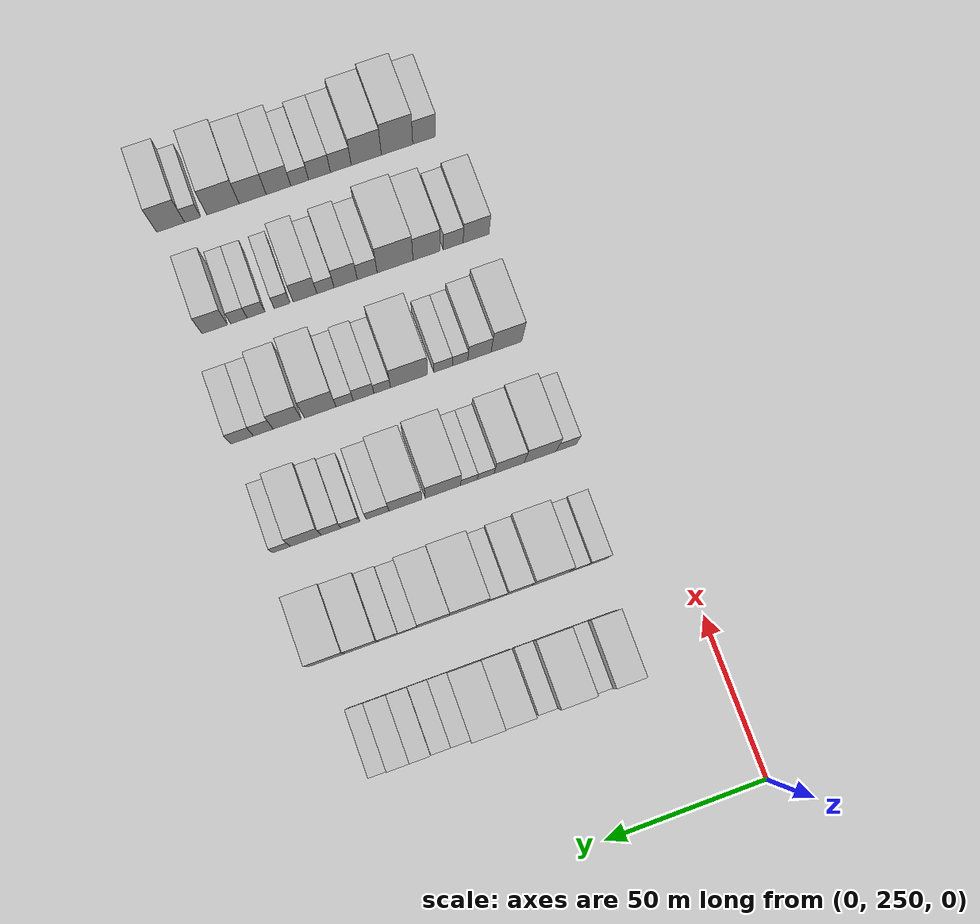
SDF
<sdf version="1.6">
 <world name="default">
  <model name="building_88">
   <static>1</static>
   <pose>50.0000 279.2473 0 0.000000 0.000000 0.000000</pose>
   <link name="link">
    <pose>0 0 10.50 0 0 0</pose>
    <collision name="collision"><geometry><box><size>20.0000 9.1618 21.0000</size></box></geometry></collision>
    <visual name="visual">
     <cast_shadows>0</cast_shadows>
     <geometry><box><size>20.0000 9.1618 21.0000</size></box></geometry>
     <material>
      <script>
       <uri>model://HANNAS_wall/materials/scripts</uri>
       <uri>model://HANNAS_wall/materials/textures</uri>
       <name>vrc/HANNAS_wall</name>
      </script>
     </material>
    </visual>
   </link>
  </model>
  <model name="building_89">
   <static>1</static>
   <pose>50.0000 286.6895 0 0.000000 0.000000 0.000000</pose>
   <link name="link">
    <pose>0 0 6.00 0 0 0</pose>
    <collision name="collision"><geometry><box><size>20.0000 5.7227 12.0000</size></box></geometry></collision>
    <visual name="visual">
     <cast_shadows>0</cast_shadows>
     <geometry><box><size>20.0000 5.7227 12.0000</size></box></geometry>
     <material>
      <script>
       <uri>model://HANNAS_wall/materials/scripts</uri>
       <uri>model://HANNAS_wall/materials/textures</uri>
       <name>vrc/HANNAS_wall</name>
      </script>
     </material>
    </visual>
   </link>
  </model>
  <model name="building_90">
   <static>1</static>
   <pose>50.0000 294.9625 0 0.000000 0.000000 0.000000</pose>
   <link name="link">
    <pose>0 0 12.00 0 0 0</pose>
    <collision name="collision"><geometry><box><size>20.0000 10.8232 24.0000</size></box></geometry></collision>
    <visual name="visual">
     <cast_shadows>0</cast_shadows>
     <geometry><box><size>20.0000 10.8232 24.0000</size></box></geometry>
     <material>
      <script>
       <uri>model://HANNAS_wall/materials/scripts</uri>
       <uri>model://HANNAS_wall/materials/textures</uri>
       <name>vrc/HANNAS_wall</name>
      </script>
     </material>
    </visual>
   </link>
  </model>
  <model name="building_91">
   <static>1</static>
   <pose>50.0000 303.2726 0 0.000000 0.000000 0.000000</pose>
   <link name="link">
    <pose>0 0 6.00 0 0 0</pose>
    <collision name="collision"><geometry><box><size>20.0000 5.7970 12.0000</size></box></geometry></collision>
    <visual name="visual">
     <cast_shadows>0</cast_shadows>
     <geometry><box><size>20.0000 5.7970 12.0000</size></box></geometry>
     <material>
      <script>
       <uri>model://HANNAS_wall/materials/scripts</uri>
       <uri>model://HANNAS_wall/materials/textures</uri>
       <name>vrc/HANNAS_wall</name>
      </script>
     </material>
    </visual>
   </link>
  </model>
  <model name="building_92">
   <static>1</static>
   <pose>50.0000 311.8122 0 0.000000 0.000000 0.000000</pose>
   <link name="link">
    <pose>0 0 10.50 0 0 0</pose>
    <collision name="collision"><geometry><box><size>20.0000 9.2822 21.0000</size></box></geometry></collision>
    <visual name="visual">
     <cast_shadows>0</cast_shadows>
     <geometry><box><size>20.0000 9.2822 21.0000</size></box></geometry>
     <material>
      <script>
       <uri>model://HANNAS_wall/materials/scripts</uri>
       <uri>model://HANNAS_wall/materials/textures</uri>
       <name>vrc/HANNAS_wall</name>
      </script>
     </material>
    </visual>
   </link>
  </model>
  <model name="building_93">
   <static>1</static>
   <pose>50.0000 321.4640 0 0.000000 0.000000 0.000000</pose>
   <link name="link">
    <pose>0 0 12.00 0 0 0</pose>
    <collision name="collision"><geometry><box><size>20.0000 10.0214 24.0000</size></box></geometry></collision>
    <visual name="visual">
     <cast_shadows>0</cast_shadows>
     <geometry><box><size>20.0000 10.0214 24.0000</size></box></geometry>
     <material>
      <script>
       <uri>model://HANNAS_wall/materials/scripts</uri>
       <uri>model://HANNAS_wall/materials/textures</uri>
       <name>vrc/HANNAS_wall</name>
      </script>
     </material>
    </visual>
   </link>
  </model>
  <model name="building_94">
   <static>1</static>
   <pose>50.0000 329.4486 0 0.000000 0.000000 0.000000</pose>
   <link name="link">
    <pose>0 0 6.00 0 0 0</pose>
    <collision name="collision"><geometry><box><size>20.0000 5.9478 12.0000</size></box></geometry></collision>
    <visual name="visual">
     <cast_shadows>0</cast_shadows>
     <geometry><box><size>20.0000 5.9478 12.0000</size></box></geometry>
     <material>
      <script>
       <uri>model://HANNAS_wall/materials/scripts</uri>
       <uri>model://HANNAS_wall/materials/textures</uri>
       <name>vrc/HANNAS_wall</name>
      </script>
     </material>
    </visual>
   </link>
  </model>
  <model name="building_95">
   <static>1</static>
   <pose>50.0000 335.3960 0 0.000000 0.000000 0.000000</pose>
   <link name="link">
    <pose>0 0 6.00 0 0 0</pose>
    <collision name="collision"><geometry><box><size>20.0000 5.9469 12.0000</size></box></geometry></collision>
    <visual name="visual">
     <cast_shadows>0</cast_shadows>
     <geometry><box><size>20.0000 5.9469 12.0000</size></box></geometry>
     <material>
      <script>
       <uri>model://HANNAS_wall/materials/scripts</uri>
       <uri>model://HANNAS_wall/materials/textures</uri>
       <name>vrc/HANNAS_wall</name>
      </script>
     </material>
    </visual>
   </link>
  </model>
  <model name="building_96">
   <static>1</static>
   <pose>50.0000 341.5275 0 0.000000 0.000000 0.000000</pose>
   <link name="link">
    <pose>0 0 7.50 0 0 0</pose>
    <collision name="collision"><geometry><box><size>20.0000 6.3160 15.0000</size></box></geometry></collision>
    <visual name="visual">
     <cast_shadows>0</cast_shadows>
     <geometry><box><size>20.0000 6.3160 15.0000</size></box></geometry>
     <material>
      <script>
       <uri>model://HANNAS_wall/materials/scripts</uri>
       <uri>model://HANNAS_wall/materials/textures</uri>
       <name>vrc/HANNAS_wall</name>
      </script>
     </material>
    </visual>
   </link>
  </model>
  <model name="building_97">
   <static>1</static>
   <pose>50.0000 348.0690 0 0.000000 0.000000 0.000000</pose>
   <link name="link">
    <pose>0 0 7.50 0 0 0</pose>
    <collision name="collision"><geometry><box><size>20.0000 6.7670 15.0000</size></box></geometry></collision>
    <visual name="visual">
     <cast_shadows>0</cast_shadows>
     <geometry><box><size>20.0000 6.7670 15.0000</size></box></geometry>
     <material>
      <script>
       <uri>model://HANNAS_wall/materials/scripts</uri>
       <uri>model://HANNAS_wall/materials/textures</uri>
       <name>vrc/HANNAS_wall</name>
      </script>
     </material>
    </visual>
   </link>
  </model>
  <model name="building_98">
   <static>1</static>
   <pose>50.0000 354.2437 0 0.000000 0.000000 0.000000</pose>
   <link name="link">
    <pose>0 0 6.00 0 0 0</pose>
    <collision name="collision"><geometry><box><size>20.0000 5.5825 12.0000</size></box></geometry></collision>
    <visual name="visual">
     <cast_shadows>0</cast_shadows>
     <geometry><box><size>20.0000 5.5825 12.0000</size></box></geometry>
     <material>
      <script>
       <uri>model://HANNAS_wall/materials/scripts</uri>
       <uri>model://HANNAS_wall/materials/textures</uri>
       <name>vrc/HANNAS_wall</name>
      </script>
     </material>
    </visual>
   </link>
  </model>
  <model name="building_221">
   <static>1</static>
   <pose>85.0000 273.9865 0 0.000000 0.000000 0.000000</pose>
   <link name="link">
    <pose>0 0 7.50 0 0 0</pose>
    <collision name="collision"><geometry><box><size>20.0000 6.2753 15.0000</size></box></geometry></collision>
    <visual name="visual">
     <cast_shadows>0</cast_shadows>
     <geometry><box><size>20.0000 6.2753 15.0000</size></box></geometry>
     <material>
      <script>
       <uri>model://HANNAS_wall/materials/scripts</uri>
       <uri>model://HANNAS_wall/materials/textures</uri>
       <name>vrc/HANNAS_wall</name>
      </script>
     </material>
    </visual>
   </link>
  </model>
  <model name="building_222">
   <static>1</static>
   <pose>85.0000 280.0619 0 0.000000 0.000000 0.000000</pose>
   <link name="link">
    <pose>0 0 6.00 0 0 0</pose>
    <collision name="collision"><geometry><box><size>20.0000 5.8754 12.0000</size></box></geometry></collision>
    <visual name="visual">
     <cast_shadows>0</cast_shadows>
     <geometry><box><size>20.0000 5.8754 12.0000</size></box></geometry>
     <material>
      <script>
       <uri>model://HANNAS_wall/materials/scripts</uri>
       <uri>model://HANNAS_wall/materials/textures</uri>
       <name>vrc/HANNAS_wall</name>
      </script>
     </material>
    </visual>
   </link>
  </model>
  <model name="building_223">
   <static>1</static>
   <pose>85.0000 288.7765 0 0.000000 0.000000 0.000000</pose>
   <link name="link">
    <pose>0 0 12.00 0 0 0</pose>
    <collision name="collision"><geometry><box><size>20.0000 11.5539 24.0000</size></box></geometry></collision>
    <visual name="visual">
     <cast_shadows>0</cast_shadows>
     <geometry><box><size>20.0000 11.5539 24.0000</size></box></geometry>
     <material>
      <script>
       <uri>model://HANNAS_wall/materials/scripts</uri>
       <uri>model://HANNAS_wall/materials/textures</uri>
       <name>vrc/HANNAS_wall</name>
      </script>
     </material>
    </visual>
   </link>
  </model>
  <model name="building_224">
   <static>1</static>
   <pose>85.0000 298.4699 0 0.000000 0.000000 0.000000</pose>
   <link name="link">
    <pose>0 0 9.00 0 0 0</pose>
    <collision name="collision"><geometry><box><size>20.0000 7.8329 18.0000</size></box></geometry></collision>
    <visual name="visual">
     <cast_shadows>0</cast_shadows>
     <geometry><box><size>20.0000 7.8329 18.0000</size></box></geometry>
     <material>
      <script>
       <uri>model://HANNAS_wall/materials/scripts</uri>
       <uri>model://HANNAS_wall/materials/textures</uri>
       <name>vrc/HANNAS_wall</name>
      </script>
     </material>
    </visual>
   </link>
  </model>
  <model name="building_225">
   <static>1</static>
   <pose>85.0000 305.2999 0 0.000000 0.000000 0.000000</pose>
   <link name="link">
    <pose>0 0 6.00 0 0 0</pose>
    <collision name="collision"><geometry><box><size>20.0000 5.8271 12.0000</size></box></geometry></collision>
    <visual name="visual">
     <cast_shadows>0</cast_shadows>
     <geometry><box><size>20.0000 5.8271 12.0000</size></box></geometry>
     <material>
      <script>
       <uri>model://HANNAS_wall/materials/scripts</uri>
       <uri>model://HANNAS_wall/materials/textures</uri>
       <name>vrc/HANNAS_wall</name>
      </script>
     </material>
    </visual>
   </link>
  </model>
  <model name="building_226">
   <static>1</static>
   <pose>85.0000 314.1725 0 0.000000 0.000000 0.000000</pose>
   <link name="link">
    <pose>0 0 12.00 0 0 0</pose>
    <collision name="collision"><geometry><box><size>20.0000 11.9181 24.0000</size></box></geometry></collision>
    <visual name="visual">
     <cast_shadows>0</cast_shadows>
     <geometry><box><size>20.0000 11.9181 24.0000</size></box></geometry>
     <material>
      <script>
       <uri>model://HANNAS_wall/materials/scripts</uri>
       <uri>model://HANNAS_wall/materials/textures</uri>
       <name>vrc/HANNAS_wall</name>
      </script>
     </material>
    </visual>
   </link>
  </model>
  <model name="building_227">
   <static>1</static>
   <pose>85.0000 325.0318 0 0.000000 0.000000 0.000000</pose>
   <link name="link">
    <pose>0 0 10.50 0 0 0</pose>
    <collision name="collision"><geometry><box><size>20.0000 9.8004 21.0000</size></box></geometry></collision>
    <visual name="visual">
     <cast_shadows>0</cast_shadows>
     <geometry><box><size>20.0000 9.8004 21.0000</size></box></geometry>
     <material>
      <script>
       <uri>model://HANNAS_wall/materials/scripts</uri>
       <uri>model://HANNAS_wall/materials/textures</uri>
       <name>vrc/HANNAS_wall</name>
      </script>
     </material>
    </visual>
   </link>
  </model>
  <model name="building_228">
   <static>1</static>
   <pose>85.0000 332.8530 0 0.000000 0.000000 0.000000</pose>
   <link name="link">
    <pose>0 0 6.00 0 0 0</pose>
    <collision name="collision"><geometry><box><size>20.0000 5.8420 12.0000</size></box></geometry></collision>
    <visual name="visual">
     <cast_shadows>0</cast_shadows>
     <geometry><box><size>20.0000 5.8420 12.0000</size></box></geometry>
     <material>
      <script>
       <uri>model://HANNAS_wall/materials/scripts</uri>
       <uri>model://HANNAS_wall/materials/textures</uri>
       <name>vrc/HANNAS_wall</name>
      </script>
     </material>
    </visual>
   </link>
  </model>
  <model name="building_229">
   <static>1</static>
   <pose>85.0000 338.9552 0 0.000000 0.000000 0.000000</pose>
   <link name="link">
    <pose>0 0 7.50 0 0 0</pose>
    <collision name="collision"><geometry><box><size>20.0000 6.3623 15.0000</size></box></geometry></collision>
    <visual name="visual">
     <cast_shadows>0</cast_shadows>
     <geometry><box><size>20.0000 6.3623 15.0000</size></box></geometry>
     <material>
      <script>
       <uri>model://HANNAS_wall/materials/scripts</uri>
       <uri>model://HANNAS_wall/materials/textures</uri>
       <name>vrc/HANNAS_wall</name>
      </script>
     </material>
    </visual>
   </link>
  </model>
  <model name="building_230">
   <static>1</static>
   <pose>85.0000 347.0585 0 0.000000 0.000000 0.000000</pose>
   <link name="link">
    <pose>0 0 10.50 0 0 0</pose>
    <collision name="collision"><geometry><box><size>20.0000 9.8443 21.0000</size></box></geometry></collision>
    <visual name="visual">
     <cast_shadows>0</cast_shadows>
     <geometry><box><size>20.0000 9.8443 21.0000</size></box></geometry>
     <material>
      <script>
       <uri>model://HANNAS_wall/materials/scripts</uri>
       <uri>model://HANNAS_wall/materials/textures</uri>
       <name>vrc/HANNAS_wall</name>
      </script>
     </material>
    </visual>
   </link>
  </model>
  <model name="building_231">
   <static>1</static>
   <pose>85.0000 357.4768 0 0.000000 0.000000 0.000000</pose>
   <link name="link">
    <pose>0 0 12.00 0 0 0</pose>
    <collision name="collision"><geometry><box><size>20.0000 10.9921 24.0000</size></box></geometry></collision>
    <visual name="visual">
     <cast_shadows>0</cast_shadows>
     <geometry><box><size>20.0000 10.9921 24.0000</size></box></geometry>
     <material>
      <script>
       <uri>model://HANNAS_wall/materials/scripts</uri>
       <uri>model://HANNAS_wall/materials/textures</uri>
       <name>vrc/HANNAS_wall</name>
      </script>
     </material>
    </visual>
   </link>
  </model>
  <model name="building_340">
   <static>1</static>
   <pose>120.0000 270.4171 0 0.000000 0.000000 0.000000</pose>
   <link name="link">
    <pose>0 0 7.50 0 0 0</pose>
    <collision name="collision"><geometry><box><size>20.0000 6.4394 15.0000</size></box></geometry></collision>
    <visual name="visual">
     <cast_shadows>0</cast_shadows>
     <geometry><box><size>20.0000 6.4394 15.0000</size></box></geometry>
     <material>
      <script>
       <uri>model://HANNAS_wall/materials/scripts</uri>
       <uri>model://HANNAS_wall/materials/textures</uri>
       <name>vrc/HANNAS_wall</name>
      </script>
     </material>
    </visual>
   </link>
  </model>
  <model name="building_341">
   <static>1</static>
   <pose>120.0000 278.7281 0 0.000000 0.000000 0.000000</pose>
   <link name="link">
    <pose>0 0 12.00 0 0 0</pose>
    <collision name="collision"><geometry><box><size>20.0000 10.1827 24.0000</size></box></geometry></collision>
    <visual name="visual">
     <cast_shadows>0</cast_shadows>
     <geometry><box><size>20.0000 10.1827 24.0000</size></box></geometry>
     <material>
      <script>
       <uri>model://HANNAS_wall/materials/scripts</uri>
       <uri>model://HANNAS_wall/materials/textures</uri>
       <name>vrc/HANNAS_wall</name>
      </script>
     </material>
    </visual>
   </link>
  </model>
  <model name="building_342">
   <static>1</static>
   <pose>120.0000 288.5776 0 0.000000 0.000000 0.000000</pose>
   <link name="link">
    <pose>0 0 10.50 0 0 0</pose>
    <collision name="collision"><geometry><box><size>20.0000 9.5162 21.0000</size></box></geometry></collision>
    <visual name="visual">
     <cast_shadows>0</cast_shadows>
     <geometry><box><size>20.0000 9.5162 21.0000</size></box></geometry>
     <material>
      <script>
       <uri>model://HANNAS_wall/materials/scripts</uri>
       <uri>model://HANNAS_wall/materials/textures</uri>
       <name>vrc/HANNAS_wall</name>
      </script>
     </material>
    </visual>
   </link>
  </model>
  <model name="building_343">
   <static>1</static>
   <pose>120.0000 295.9961 0 0.000000 0.000000 0.000000</pose>
   <link name="link">
    <pose>0 0 6.00 0 0 0</pose>
    <collision name="collision"><geometry><box><size>20.0000 5.3208 12.0000</size></box></geometry></collision>
    <visual name="visual">
     <cast_shadows>0</cast_shadows>
     <geometry><box><size>20.0000 5.3208 12.0000</size></box></geometry>
     <material>
      <script>
       <uri>model://HANNAS_wall/materials/scripts</uri>
       <uri>model://HANNAS_wall/materials/textures</uri>
       <name>vrc/HANNAS_wall</name>
      </script>
     </material>
    </visual>
   </link>
  </model>
  <model name="building_344">
   <static>1</static>
   <pose>120.0000 301.3036 0 0.000000 0.000000 0.000000</pose>
   <link name="link">
    <pose>0 0 6.00 0 0 0</pose>
    <collision name="collision"><geometry><box><size>20.0000 5.2942 12.0000</size></box></geometry></collision>
    <visual name="visual">
     <cast_shadows>0</cast_shadows>
     <geometry><box><size>20.0000 5.2942 12.0000</size></box></geometry>
     <material>
      <script>
       <uri>model://HANNAS_wall/materials/scripts</uri>
       <uri>model://HANNAS_wall/materials/textures</uri>
       <name>vrc/HANNAS_wall</name>
      </script>
     </material>
    </visual>
   </link>
  </model>
  <model name="building_345">
   <static>1</static>
   <pose>120.0000 309.5109 0 0.000000 0.000000 0.000000</pose>
   <link name="link">
    <pose>0 0 12.00 0 0 0</pose>
    <collision name="collision"><geometry><box><size>20.0000 11.1205 24.0000</size></box></geometry></collision>
    <visual name="visual">
     <cast_shadows>0</cast_shadows>
     <geometry><box><size>20.0000 11.1205 24.0000</size></box></geometry>
     <material>
      <script>
       <uri>model://HANNAS_wall/materials/scripts</uri>
       <uri>model://HANNAS_wall/materials/textures</uri>
       <name>vrc/HANNAS_wall</name>
      </script>
     </material>
    </visual>
   </link>
  </model>
  <model name="building_346">
   <static>1</static>
   <pose>120.0000 321.2701 0 0.000000 0.000000 0.000000</pose>
   <link name="link">
    <pose>0 0 10.50 0 0 0</pose>
    <collision name="collision"><geometry><box><size>20.0000 10.3979 21.0000</size></box></geometry></collision>
    <visual name="visual">
     <cast_shadows>0</cast_shadows>
     <geometry><box><size>20.0000 10.3979 21.0000</size></box></geometry>
     <material>
      <script>
       <uri>model://HANNAS_wall/materials/scripts</uri>
       <uri>model://HANNAS_wall/materials/textures</uri>
       <name>vrc/HANNAS_wall</name>
      </script>
     </material>
    </visual>
   </link>
  </model>
  <model name="building_347">
   <static>1</static>
   <pose>120.0000 330.0333 0 0.000000 0.000000 0.000000</pose>
   <link name="link">
    <pose>0 0 7.50 0 0 0</pose>
    <collision name="collision"><geometry><box><size>20.0000 7.1287 15.0000</size></box></geometry></collision>
    <visual name="visual">
     <cast_shadows>0</cast_shadows>
     <geometry><box><size>20.0000 7.1287 15.0000</size></box></geometry>
     <material>
      <script>
       <uri>model://HANNAS_wall/materials/scripts</uri>
       <uri>model://HANNAS_wall/materials/textures</uri>
       <name>vrc/HANNAS_wall</name>
      </script>
     </material>
    </visual>
   </link>
  </model>
  <model name="building_348">
   <static>1</static>
   <pose>120.0000 338.5299 0 0.000000 0.000000 0.000000</pose>
   <link name="link">
    <pose>0 0 6.00 0 0 0</pose>
    <collision name="collision"><geometry><box><size>20.0000 5.8646 12.0000</size></box></geometry></collision>
    <visual name="visual">
     <cast_shadows>0</cast_shadows>
     <geometry><box><size>20.0000 5.8646 12.0000</size></box></geometry>
     <material>
      <script>
       <uri>model://HANNAS_wall/materials/scripts</uri>
       <uri>model://HANNAS_wall/materials/textures</uri>
       <name>vrc/HANNAS_wall</name>
      </script>
     </material>
    </visual>
   </link>
  </model>
  <model name="building_349">
   <static>1</static>
   <pose>120.0000 344.5566 0 0.000000 0.000000 0.000000</pose>
   <link name="link">
    <pose>0 0 7.50 0 0 0</pose>
    <collision name="collision"><geometry><box><size>20.0000 6.1887 15.0000</size></box></geometry></collision>
    <visual name="visual">
     <cast_shadows>0</cast_shadows>
     <geometry><box><size>20.0000 6.1887 15.0000</size></box></geometry>
     <material>
      <script>
       <uri>model://HANNAS_wall/materials/scripts</uri>
       <uri>model://HANNAS_wall/materials/textures</uri>
       <name>vrc/HANNAS_wall</name>
      </script>
     </material>
    </visual>
   </link>
  </model>
  <model name="building_350">
   <static>1</static>
   <pose>120.0000 352.4219 0 0.000000 0.000000 0.000000</pose>
   <link name="link">
    <pose>0 0 10.50 0 0 0</pose>
    <collision name="collision"><geometry><box><size>20.0000 9.5420 21.0000</size></box></geometry></collision>
    <visual name="visual">
     <cast_shadows>0</cast_shadows>
     <geometry><box><size>20.0000 9.5420 21.0000</size></box></geometry>
     <material>
      <script>
       <uri>model://HANNAS_wall/materials/scripts</uri>
       <uri>model://HANNAS_wall/materials/textures</uri>
       <name>vrc/HANNAS_wall</name>
      </script>
     </material>
    </visual>
   </link>
  </model>
  <model name="building_351">
   <static>1</static>
   <pose>120.0000 359.9753 0 0.000000 0.000000 0.000000</pose>
   <link name="link">
    <pose>0 0 6.00 0 0 0</pose>
    <collision name="collision"><geometry><box><size>20.0000 5.5649 12.0000</size></box></geometry></collision>
    <visual name="visual">
     <cast_shadows>0</cast_shadows>
     <geometry><box><size>20.0000 5.5649 12.0000</size></box></geometry>
     <material>
      <script>
       <uri>model://HANNAS_wall/materials/scripts</uri>
       <uri>model://HANNAS_wall/materials/textures</uri>
       <name>vrc/HANNAS_wall</name>
      </script>
     </material>
    </visual>
   </link>
  </model>
  <model name="building_461">
   <static>1</static>
   <pose>155.0000 276.5347 0 0.000000 0.000000 0.000000</pose>
   <link name="link">
    <pose>0 0 12.00 0 0 0</pose>
    <collision name="collision"><geometry><box><size>20.0000 9.8182 24.0000</size></box></geometry></collision>
    <visual name="visual">
     <cast_shadows>0</cast_shadows>
     <geometry><box><size>20.0000 9.8182 24.0000</size></box></geometry>
     <material>
      <script>
       <uri>model://HANNAS_wall/materials/scripts</uri>
       <uri>model://HANNAS_wall/materials/textures</uri>
       <name>vrc/HANNAS_wall</name>
      </script>
     </material>
    </visual>
   </link>
  </model>
  <model name="building_462">
   <static>1</static>
   <pose>155.0000 285.1681 0 0.000000 0.000000 0.000000</pose>
   <link name="link">
    <pose>0 0 9.00 0 0 0</pose>
    <collision name="collision"><geometry><box><size>20.0000 7.4486 18.0000</size></box></geometry></collision>
    <visual name="visual">
     <cast_shadows>0</cast_shadows>
     <geometry><box><size>20.0000 7.4486 18.0000</size></box></geometry>
     <material>
      <script>
       <uri>model://HANNAS_wall/materials/scripts</uri>
       <uri>model://HANNAS_wall/materials/textures</uri>
       <name>vrc/HANNAS_wall</name>
      </script>
     </material>
    </visual>
   </link>
  </model>
  <model name="building_463">
   <static>1</static>
   <pose>155.0000 291.3958 0 0.000000 0.000000 0.000000</pose>
   <link name="link">
    <pose>0 0 6.00 0 0 0</pose>
    <collision name="collision"><geometry><box><size>20.0000 5.0066 12.0000</size></box></geometry></collision>
    <visual name="visual">
     <cast_shadows>0</cast_shadows>
     <geometry><box><size>20.0000 5.0066 12.0000</size></box></geometry>
     <material>
      <script>
       <uri>model://HANNAS_wall/materials/scripts</uri>
       <uri>model://HANNAS_wall/materials/textures</uri>
       <name>vrc/HANNAS_wall</name>
      </script>
     </material>
    </visual>
   </link>
  </model>
  <model name="building_464">
   <static>1</static>
   <pose>155.0000 296.8434 0 0.000000 0.000000 0.000000</pose>
   <link name="link">
    <pose>0 0 6.00 0 0 0</pose>
    <collision name="collision"><geometry><box><size>20.0000 5.8887 12.0000</size></box></geometry></collision>
    <visual name="visual">
     <cast_shadows>0</cast_shadows>
     <geometry><box><size>20.0000 5.8887 12.0000</size></box></geometry>
     <material>
      <script>
       <uri>model://HANNAS_wall/materials/scripts</uri>
       <uri>model://HANNAS_wall/materials/textures</uri>
       <name>vrc/HANNAS_wall</name>
      </script>
     </material>
    </visual>
   </link>
  </model>
  <model name="building_465">
   <static>1</static>
   <pose>155.0000 307.6956 0 0.000000 0.000000 0.000000</pose>
   <link name="link">
    <pose>0 0 12.00 0 0 0</pose>
    <collision name="collision"><geometry><box><size>20.0000 11.8158 24.0000</size></box></geometry></collision>
    <visual name="visual">
     <cast_shadows>0</cast_shadows>
     <geometry><box><size>20.0000 11.8158 24.0000</size></box></geometry>
     <material>
      <script>
       <uri>model://HANNAS_wall/materials/scripts</uri>
       <uri>model://HANNAS_wall/materials/textures</uri>
       <name>vrc/HANNAS_wall</name>
      </script>
     </material>
    </visual>
   </link>
  </model>
  <model name="building_466">
   <static>1</static>
   <pose>155.0000 316.2322 0 0.000000 0.000000 0.000000</pose>
   <link name="link">
    <pose>0 0 6.00 0 0 0</pose>
    <collision name="collision"><geometry><box><size>20.0000 5.2574 12.0000</size></box></geometry></collision>
    <visual name="visual">
     <cast_shadows>0</cast_shadows>
     <geometry><box><size>20.0000 5.2574 12.0000</size></box></geometry>
     <material>
      <script>
       <uri>model://HANNAS_wall/materials/scripts</uri>
       <uri>model://HANNAS_wall/materials/textures</uri>
       <name>vrc/HANNAS_wall</name>
      </script>
     </material>
    </visual>
   </link>
  </model>
  <model name="building_467">
   <static>1</static>
   <pose>155.0000 322.1403 0 0.000000 0.000000 0.000000</pose>
   <link name="link">
    <pose>0 0 7.50 0 0 0</pose>
    <collision name="collision"><geometry><box><size>20.0000 6.5587 15.0000</size></box></geometry></collision>
    <visual name="visual">
     <cast_shadows>0</cast_shadows>
     <geometry><box><size>20.0000 6.5587 15.0000</size></box></geometry>
     <material>
      <script>
       <uri>model://HANNAS_wall/materials/scripts</uri>
       <uri>model://HANNAS_wall/materials/textures</uri>
       <name>vrc/HANNAS_wall</name>
      </script>
     </material>
    </visual>
   </link>
  </model>
  <model name="building_468">
   <static>1</static>
   <pose>155.0000 328.1553 0 0.000000 0.000000 0.000000</pose>
   <link name="link">
    <pose>0 0 6.00 0 0 0</pose>
    <collision name="collision"><geometry><box><size>20.0000 5.4712 12.0000</size></box></geometry></collision>
    <visual name="visual">
     <cast_shadows>0</cast_shadows>
     <geometry><box><size>20.0000 5.4712 12.0000</size></box></geometry>
     <material>
      <script>
       <uri>model://HANNAS_wall/materials/scripts</uri>
       <uri>model://HANNAS_wall/materials/textures</uri>
       <name>vrc/HANNAS_wall</name>
      </script>
     </material>
    </visual>
   </link>
  </model>
  <model name="building_469">
   <static>1</static>
   <pose>155.0000 335.8884 0 0.000000 0.000000 0.000000</pose>
   <link name="link">
    <pose>0 0 12.00 0 0 0</pose>
    <collision name="collision"><geometry><box><size>20.0000 9.9950 24.0000</size></box></geometry></collision>
    <visual name="visual">
     <cast_shadows>0</cast_shadows>
     <geometry><box><size>20.0000 9.9950 24.0000</size></box></geometry>
     <material>
      <script>
       <uri>model://HANNAS_wall/materials/scripts</uri>
       <uri>model://HANNAS_wall/materials/textures</uri>
       <name>vrc/HANNAS_wall</name>
      </script>
     </material>
    </visual>
   </link>
  </model>
  <model name="building_470">
   <static>1</static>
   <pose>155.0000 346.3557 0 0.000000 0.000000 0.000000</pose>
   <link name="link">
    <pose>0 0 10.50 0 0 0</pose>
    <collision name="collision"><geometry><box><size>20.0000 8.9396 21.0000</size></box></geometry></collision>
    <visual name="visual">
     <cast_shadows>0</cast_shadows>
     <geometry><box><size>20.0000 8.9396 21.0000</size></box></geometry>
     <material>
      <script>
       <uri>model://HANNAS_wall/materials/scripts</uri>
       <uri>model://HANNAS_wall/materials/textures</uri>
       <name>vrc/HANNAS_wall</name>
      </script>
     </material>
    </visual>
   </link>
  </model>
  <model name="building_471">
   <static>1</static>
   <pose>155.0000 353.9232 0 0.000000 0.000000 0.000000</pose>
   <link name="link">
    <pose>0 0 7.50 0 0 0</pose>
    <collision name="collision"><geometry><box><size>20.0000 6.1954 15.0000</size></box></geometry></collision>
    <visual name="visual">
     <cast_shadows>0</cast_shadows>
     <geometry><box><size>20.0000 6.1954 15.0000</size></box></geometry>
     <material>
      <script>
       <uri>model://HANNAS_wall/materials/scripts</uri>
       <uri>model://HANNAS_wall/materials/textures</uri>
       <name>vrc/HANNAS_wall</name>
      </script>
     </material>
    </visual>
   </link>
  </model>
  <model name="building_472">
   <static>1</static>
   <pose>155.0000 360.5276 0 0.000000 0.000000 0.000000</pose>
   <link name="link">
    <pose>0 0 7.50 0 0 0</pose>
    <collision name="collision"><geometry><box><size>20.0000 7.0134 15.0000</size></box></geometry></collision>
    <visual name="visual">
     <cast_shadows>0</cast_shadows>
     <geometry><box><size>20.0000 7.0134 15.0000</size></box></geometry>
     <material>
      <script>
       <uri>model://HANNAS_wall/materials/scripts</uri>
       <uri>model://HANNAS_wall/materials/textures</uri>
       <name>vrc/HANNAS_wall</name>
      </script>
     </material>
    </visual>
   </link>
  </model>
  <model name="building_586">
   <static>1</static>
   <pose>190.0000 273.5458 0 0.000000 0.000000 0.000000</pose>
   <link name="link">
    <pose>0 0 9.00 0 0 0</pose>
    <collision name="collision"><geometry><box><size>20.0000 8.3801 18.0000</size></box></geometry></collision>
    <visual name="visual">
     <cast_shadows>0</cast_shadows>
     <geometry><box><size>20.0000 8.3801 18.0000</size></box></geometry>
     <material>
      <script>
       <uri>model://HANNAS_wall/materials/scripts</uri>
       <uri>model://HANNAS_wall/materials/textures</uri>
       <name>vrc/HANNAS_wall</name>
      </script>
     </material>
    </visual>
   </link>
  </model>
  <model name="building_587">
   <static>1</static>
   <pose>190.0000 280.9287 0 0.000000 0.000000 0.000000</pose>
   <link name="link">
    <pose>0 0 7.50 0 0 0</pose>
    <collision name="collision"><geometry><box><size>20.0000 6.3856 15.0000</size></box></geometry></collision>
    <visual name="visual">
     <cast_shadows>0</cast_shadows>
     <geometry><box><size>20.0000 6.3856 15.0000</size></box></geometry>
     <material>
      <script>
       <uri>model://HANNAS_wall/materials/scripts</uri>
       <uri>model://HANNAS_wall/materials/textures</uri>
       <name>vrc/HANNAS_wall</name>
      </script>
     </material>
    </visual>
   </link>
  </model>
  <model name="building_588">
   <static>1</static>
   <pose>190.0000 289.5291 0 0.000000 0.000000 0.000000</pose>
   <link name="link">
    <pose>0 0 10.50 0 0 0</pose>
    <collision name="collision"><geometry><box><size>20.0000 8.8153 21.0000</size></box></geometry></collision>
    <visual name="visual">
     <cast_shadows>0</cast_shadows>
     <geometry><box><size>20.0000 8.8153 21.0000</size></box></geometry>
     <material>
      <script>
       <uri>model://HANNAS_wall/materials/scripts</uri>
       <uri>model://HANNAS_wall/materials/textures</uri>
       <name>vrc/HANNAS_wall</name>
      </script>
     </material>
    </visual>
   </link>
  </model>
  <model name="building_589">
   <static>1</static>
   <pose>190.0000 299.7343 0 0.000000 0.000000 0.000000</pose>
   <link name="link">
    <pose>0 0 12.00 0 0 0</pose>
    <collision name="collision"><geometry><box><size>20.0000 11.5951 24.0000</size></box></geometry></collision>
    <visual name="visual">
     <cast_shadows>0</cast_shadows>
     <geometry><box><size>20.0000 11.5951 24.0000</size></box></geometry>
     <material>
      <script>
       <uri>model://HANNAS_wall/materials/scripts</uri>
       <uri>model://HANNAS_wall/materials/textures</uri>
       <name>vrc/HANNAS_wall</name>
      </script>
     </material>
    </visual>
   </link>
  </model>
  <model name="building_590">
   <static>1</static>
   <pose>190.0000 308.7307 0 0.000000 0.000000 0.000000</pose>
   <link name="link">
    <pose>0 0 7.50 0 0 0</pose>
    <collision name="collision"><geometry><box><size>20.0000 6.3978 15.0000</size></box></geometry></collision>
    <visual name="visual">
     <cast_shadows>0</cast_shadows>
     <geometry><box><size>20.0000 6.3978 15.0000</size></box></geometry>
     <material>
      <script>
       <uri>model://HANNAS_wall/materials/scripts</uri>
       <uri>model://HANNAS_wall/materials/textures</uri>
       <name>vrc/HANNAS_wall</name>
      </script>
     </material>
    </visual>
   </link>
  </model>
  <model name="building_591">
   <static>1</static>
   <pose>190.0000 315.6694 0 0.000000 0.000000 0.000000</pose>
   <link name="link">
    <pose>0 0 9.00 0 0 0</pose>
    <collision name="collision"><geometry><box><size>20.0000 7.4796 18.0000</size></box></geometry></collision>
    <visual name="visual">
     <cast_shadows>0</cast_shadows>
     <geometry><box><size>20.0000 7.4796 18.0000</size></box></geometry>
     <material>
      <script>
       <uri>model://HANNAS_wall/materials/scripts</uri>
       <uri>model://HANNAS_wall/materials/textures</uri>
       <name>vrc/HANNAS_wall</name>
      </script>
     </material>
    </visual>
   </link>
  </model>
  <model name="building_592">
   <static>1</static>
   <pose>190.0000 322.1671 0 0.000000 0.000000 0.000000</pose>
   <link name="link">
    <pose>0 0 6.00 0 0 0</pose>
    <collision name="collision"><geometry><box><size>20.0000 5.5157 12.0000</size></box></geometry></collision>
    <visual name="visual">
     <cast_shadows>0</cast_shadows>
     <geometry><box><size>20.0000 5.5157 12.0000</size></box></geometry>
     <material>
      <script>
       <uri>model://HANNAS_wall/materials/scripts</uri>
       <uri>model://HANNAS_wall/materials/textures</uri>
       <name>vrc/HANNAS_wall</name>
      </script>
     </material>
    </visual>
   </link>
  </model>
  <model name="building_593">
   <static>1</static>
   <pose>190.0000 328.7235 0 0.000000 0.000000 0.000000</pose>
   <link name="link">
    <pose>0 0 9.00 0 0 0</pose>
    <collision name="collision"><geometry><box><size>20.0000 7.5971 18.0000</size></box></geometry></collision>
    <visual name="visual">
     <cast_shadows>0</cast_shadows>
     <geometry><box><size>20.0000 7.5971 18.0000</size></box></geometry>
     <material>
      <script>
       <uri>model://HANNAS_wall/materials/scripts</uri>
       <uri>model://HANNAS_wall/materials/textures</uri>
       <name>vrc/HANNAS_wall</name>
      </script>
     </material>
    </visual>
   </link>
  </model>
  <model name="building_594">
   <static>1</static>
   <pose>190.0000 336.0433 0 0.000000 0.000000 0.000000</pose>
   <link name="link">
    <pose>0 0 6.00 0 0 0</pose>
    <collision name="collision"><geometry><box><size>20.0000 5.0425 12.0000</size></box></geometry></collision>
    <visual name="visual">
     <cast_shadows>0</cast_shadows>
     <geometry><box><size>20.0000 5.0425 12.0000</size></box></geometry>
     <material>
      <script>
       <uri>model://HANNAS_wall/materials/scripts</uri>
       <uri>model://HANNAS_wall/materials/textures</uri>
       <name>vrc/HANNAS_wall</name>
      </script>
     </material>
    </visual>
   </link>
  </model>
  <model name="building_595">
   <static>1</static>
   <pose>190.0000 344.4047 0 0.000000 0.000000 0.000000</pose>
   <link name="link">
    <pose>0 0 6.00 0 0 0</pose>
    <collision name="collision"><geometry><box><size>20.0000 5.6802 12.0000</size></box></geometry></collision>
    <visual name="visual">
     <cast_shadows>0</cast_shadows>
     <geometry><box><size>20.0000 5.6802 12.0000</size></box></geometry>
     <material>
      <script>
       <uri>model://HANNAS_wall/materials/scripts</uri>
       <uri>model://HANNAS_wall/materials/textures</uri>
       <name>vrc/HANNAS_wall</name>
      </script>
     </material>
    </visual>
   </link>
  </model>
  <model name="building_596">
   <static>1</static>
   <pose>190.0000 349.8702 0 0.000000 0.000000 0.000000</pose>
   <link name="link">
    <pose>0 0 6.00 0 0 0</pose>
    <collision name="collision"><geometry><box><size>20.0000 5.2508 12.0000</size></box></geometry></collision>
    <visual name="visual">
     <cast_shadows>0</cast_shadows>
     <geometry><box><size>20.0000 5.2508 12.0000</size></box></geometry>
     <material>
      <script>
       <uri>model://HANNAS_wall/materials/scripts</uri>
       <uri>model://HANNAS_wall/materials/textures</uri>
       <name>vrc/HANNAS_wall</name>
      </script>
     </material>
    </visual>
   </link>
  </model>
  <model name="building_597">
   <static>1</static>
   <pose>190.0000 357.5552 0 0.000000 0.000000 0.000000</pose>
   <link name="link">
    <pose>0 0 9.00 0 0 0</pose>
    <collision name="collision"><geometry><box><size>20.0000 8.1191 18.0000</size></box></geometry></collision>
    <visual name="visual">
     <cast_shadows>0</cast_shadows>
     <geometry><box><size>20.0000 8.1191 18.0000</size></box></geometry>
     <material>
      <script>
       <uri>model://HANNAS_wall/materials/scripts</uri>
       <uri>model://HANNAS_wall/materials/textures</uri>
       <name>vrc/HANNAS_wall</name>
      </script>
     </material>
    </visual>
   </link>
  </model>
  <model name="building_719">
   <static>1</static>
   <pose>225.0000 277.8087 0 0.000000 0.000000 0.000000</pose>
   <link name="link">
    <pose>0 0 9.00 0 0 0</pose>
    <collision name="collision"><geometry><box><size>20.0000 7.4938 18.0000</size></box></geometry></collision>
    <visual name="visual">
     <cast_shadows>0</cast_shadows>
     <geometry><box><size>20.0000 7.4938 18.0000</size></box></geometry>
     <material>
      <script>
       <uri>model://HANNAS_wall/materials/scripts</uri>
       <uri>model://HANNAS_wall/materials/textures</uri>
       <name>vrc/HANNAS_wall</name>
      </script>
     </material>
    </visual>
   </link>
  </model>
  <model name="building_720">
   <static>1</static>
   <pose>225.0000 286.6915 0 0.000000 0.000000 0.000000</pose>
   <link name="link">
    <pose>0 0 12.00 0 0 0</pose>
    <collision name="collision"><geometry><box><size>20.0000 10.2717 24.0000</size></box></geometry></collision>
    <visual name="visual">
     <cast_shadows>0</cast_shadows>
     <geometry><box><size>20.0000 10.2717 24.0000</size></box></geometry>
     <material>
      <script>
       <uri>model://HANNAS_wall/materials/scripts</uri>
       <uri>model://HANNAS_wall/materials/textures</uri>
       <name>vrc/HANNAS_wall</name>
      </script>
     </material>
    </visual>
   </link>
  </model>
  <model name="building_721">
   <static>1</static>
   <pose>225.0000 296.7417 0 0.000000 0.000000 0.000000</pose>
   <link name="link">
    <pose>0 0 10.50 0 0 0</pose>
    <collision name="collision"><geometry><box><size>20.0000 9.8287 21.0000</size></box></geometry></collision>
    <visual name="visual">
     <cast_shadows>0</cast_shadows>
     <geometry><box><size>20.0000 9.8287 21.0000</size></box></geometry>
     <material>
      <script>
       <uri>model://HANNAS_wall/materials/scripts</uri>
       <uri>model://HANNAS_wall/materials/textures</uri>
       <name>vrc/HANNAS_wall</name>
      </script>
     </material>
    </visual>
   </link>
  </model>
  <model name="building_722">
   <static>1</static>
   <pose>225.0000 305.0565 0 0.000000 0.000000 0.000000</pose>
   <link name="link">
    <pose>0 0 7.50 0 0 0</pose>
    <collision name="collision"><geometry><box><size>20.0000 6.8008 15.0000</size></box></geometry></collision>
    <visual name="visual">
     <cast_shadows>0</cast_shadows>
     <geometry><box><size>20.0000 6.8008 15.0000</size></box></geometry>
     <material>
      <script>
       <uri>model://HANNAS_wall/materials/scripts</uri>
       <uri>model://HANNAS_wall/materials/textures</uri>
       <name>vrc/HANNAS_wall</name>
      </script>
     </material>
    </visual>
   </link>
  </model>
  <model name="building_723">
   <static>1</static>
   <pose>225.0000 312.0231 0 0.000000 0.000000 0.000000</pose>
   <link name="link">
    <pose>0 0 7.50 0 0 0</pose>
    <collision name="collision"><geometry><box><size>20.0000 7.1322 15.0000</size></box></geometry></collision>
    <visual name="visual">
     <cast_shadows>0</cast_shadows>
     <geometry><box><size>20.0000 7.1322 15.0000</size></box></geometry>
     <material>
      <script>
       <uri>model://HANNAS_wall/materials/scripts</uri>
       <uri>model://HANNAS_wall/materials/textures</uri>
       <name>vrc/HANNAS_wall</name>
      </script>
     </material>
    </visual>
   </link>
  </model>
  <model name="building_724">
   <static>1</static>
   <pose>225.0000 318.4886 0 0.000000 0.000000 0.000000</pose>
   <link name="link">
    <pose>0 0 6.00 0 0 0</pose>
    <collision name="collision"><geometry><box><size>20.0000 5.7989 12.0000</size></box></geometry></collision>
    <visual name="visual">
     <cast_shadows>0</cast_shadows>
     <geometry><box><size>20.0000 5.7989 12.0000</size></box></geometry>
     <material>
      <script>
       <uri>model://HANNAS_wall/materials/scripts</uri>
       <uri>model://HANNAS_wall/materials/textures</uri>
       <name>vrc/HANNAS_wall</name>
      </script>
     </material>
    </visual>
   </link>
  </model>
  <model name="building_725">
   <static>1</static>
   <pose>225.0000 325.3801 0 0.000000 0.000000 0.000000</pose>
   <link name="link">
    <pose>0 0 9.00 0 0 0</pose>
    <collision name="collision"><geometry><box><size>20.0000 7.9842 18.0000</size></box></geometry></collision>
    <visual name="visual">
     <cast_shadows>0</cast_shadows>
     <geometry><box><size>20.0000 7.9842 18.0000</size></box></geometry>
     <material>
      <script>
       <uri>model://HANNAS_wall/materials/scripts</uri>
       <uri>model://HANNAS_wall/materials/textures</uri>
       <name>vrc/HANNAS_wall</name>
      </script>
     </material>
    </visual>
   </link>
  </model>
  <model name="building_726">
   <static>1</static>
   <pose>225.0000 333.7366 0 0.000000 0.000000 0.000000</pose>
   <link name="link">
    <pose>0 0 9.00 0 0 0</pose>
    <collision name="collision"><geometry><box><size>20.0000 8.7287 18.0000</size></box></geometry></collision>
    <visual name="visual">
     <cast_shadows>0</cast_shadows>
     <geometry><box><size>20.0000 8.7287 18.0000</size></box></geometry>
     <material>
      <script>
       <uri>model://HANNAS_wall/materials/scripts</uri>
       <uri>model://HANNAS_wall/materials/textures</uri>
       <name>vrc/HANNAS_wall</name>
      </script>
     </material>
    </visual>
   </link>
  </model>
  <model name="building_727">
   <static>1</static>
   <pose>225.0000 343.3131 0 0.000000 0.000000 0.000000</pose>
   <link name="link">
    <pose>0 0 10.50 0 0 0</pose>
    <collision name="collision"><geometry><box><size>20.0000 10.4244 21.0000</size></box></geometry></collision>
    <visual name="visual">
     <cast_shadows>0</cast_shadows>
     <geometry><box><size>20.0000 10.4244 21.0000</size></box></geometry>
     <material>
      <script>
       <uri>model://HANNAS_wall/materials/scripts</uri>
       <uri>model://HANNAS_wall/materials/textures</uri>
       <name>vrc/HANNAS_wall</name>
      </script>
     </material>
    </visual>
   </link>
  </model>
  <model name="building_728">
   <static>1</static>
   <pose>225.0000 353.1069 0 0.000000 0.000000 0.000000</pose>
   <link name="link">
    <pose>0 0 6.00 0 0 0</pose>
    <collision name="collision"><geometry><box><size>20.0000 5.1630 12.0000</size></box></geometry></collision>
    <visual name="visual">
     <cast_shadows>0</cast_shadows>
     <geometry><box><size>20.0000 5.1630 12.0000</size></box></geometry>
     <material>
      <script>
       <uri>model://HANNAS_wall/materials/scripts</uri>
       <uri>model://HANNAS_wall/materials/textures</uri>
       <name>vrc/HANNAS_wall</name>
      </script>
     </material>
    </visual>
   </link>
  </model>
  <model name="building_729">
   <static>1</static>
   <pose>225.0000 360.2106 0 0.000000 0.000000 0.000000</pose>
   <link name="link">
    <pose>0 0 10.50 0 0 0</pose>
    <collision name="collision"><geometry><box><size>20.0000 9.0445 21.0000</size></box></geometry></collision>
    <visual name="visual">
     <cast_shadows>0</cast_shadows>
     <geometry><box><size>20.0000 9.0445 21.0000</size></box></geometry>
     <material>
      <script>
       <uri>model://HANNAS_wall/materials/scripts</uri>
       <uri>model://HANNAS_wall/materials/textures</uri>
       <name>vrc/HANNAS_wall</name>
      </script>
     </material>
    </visual>
   </link>
  </model>
 </world>
</sdf>
